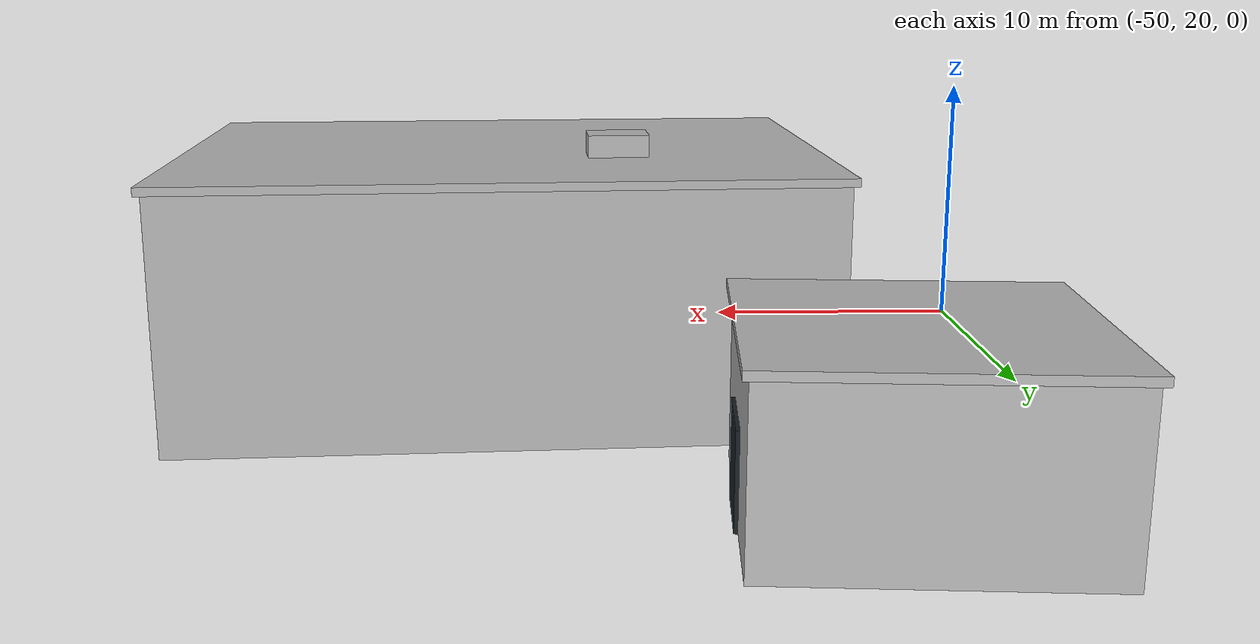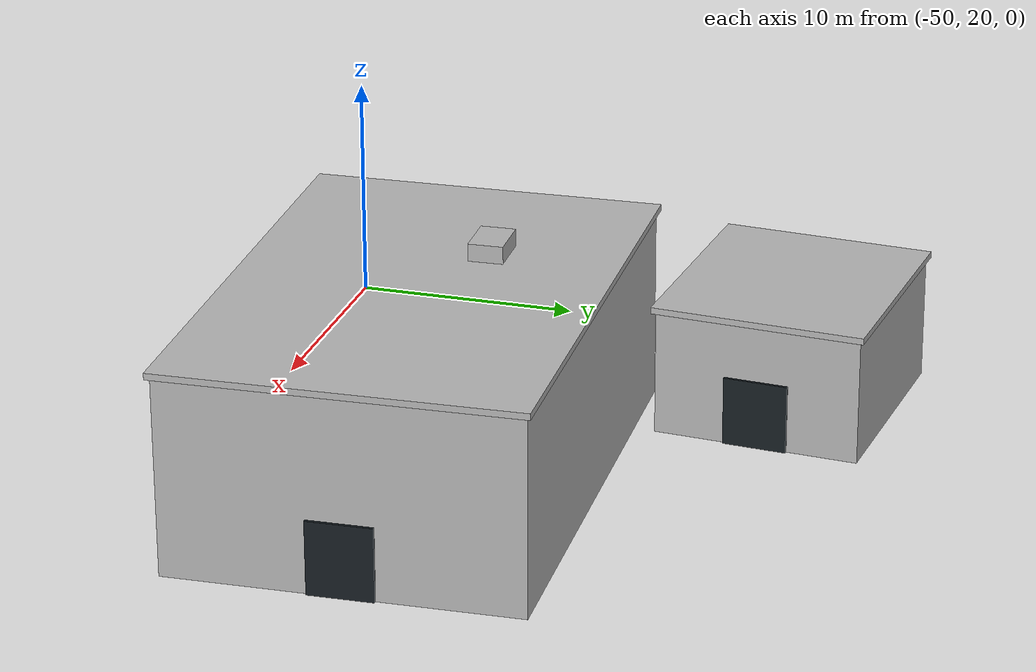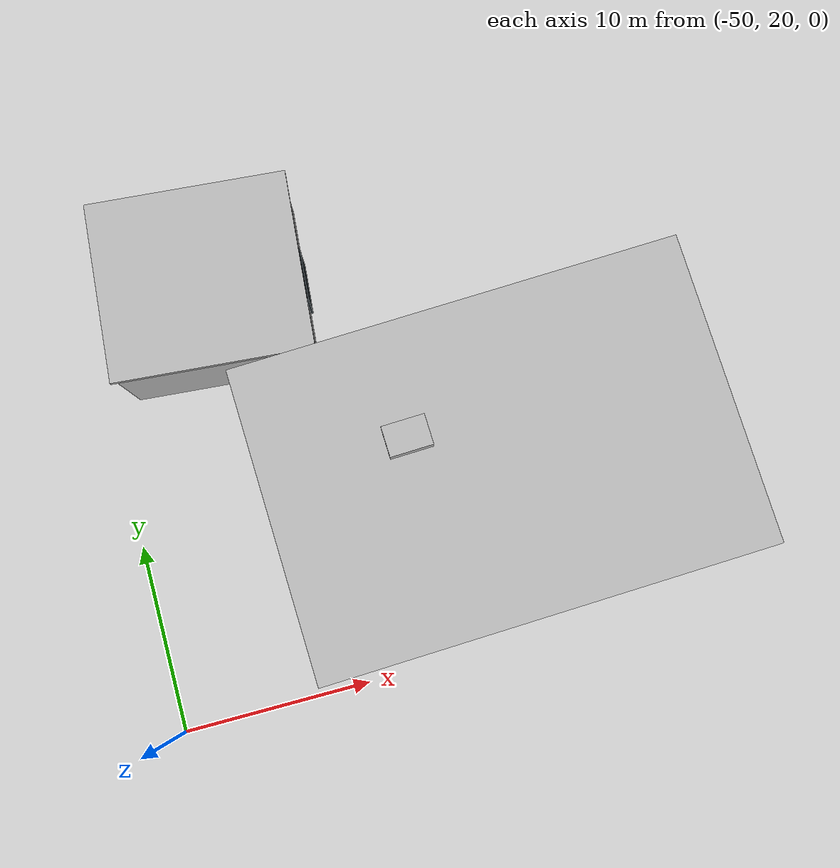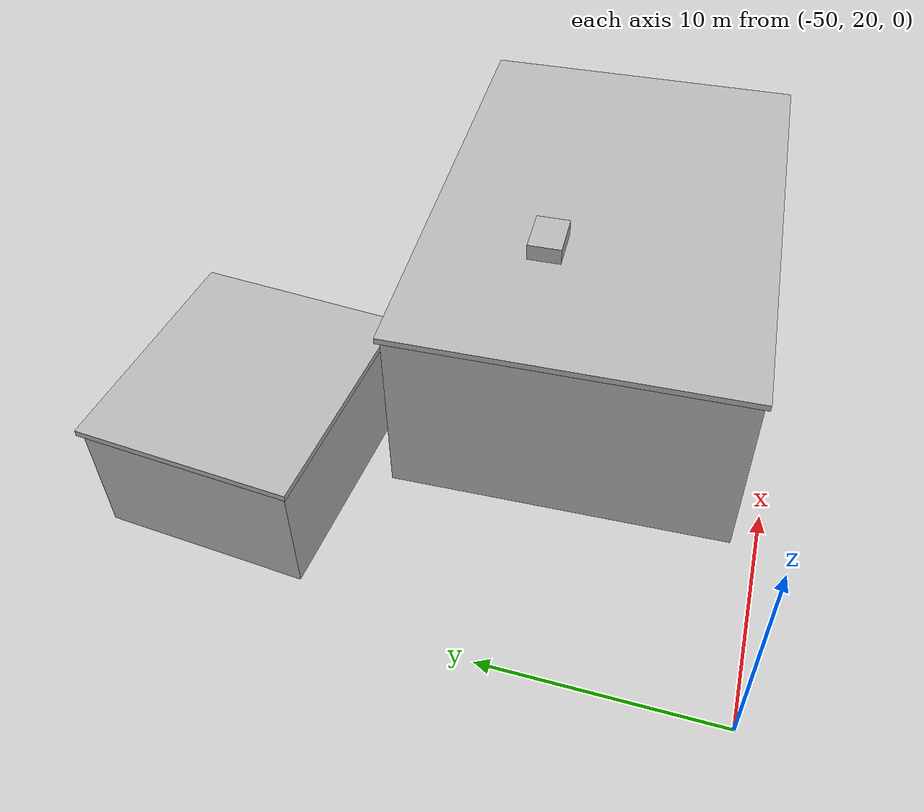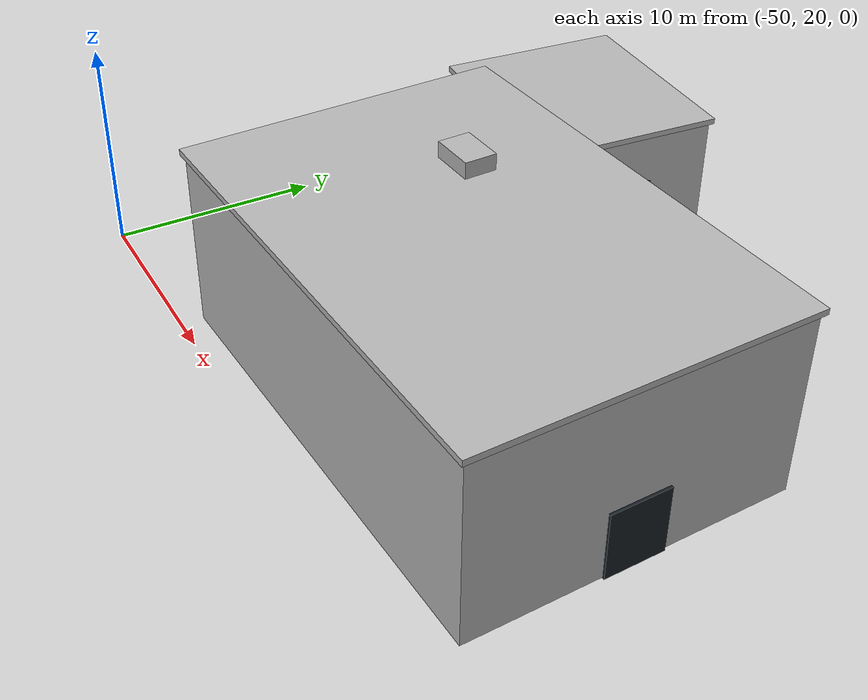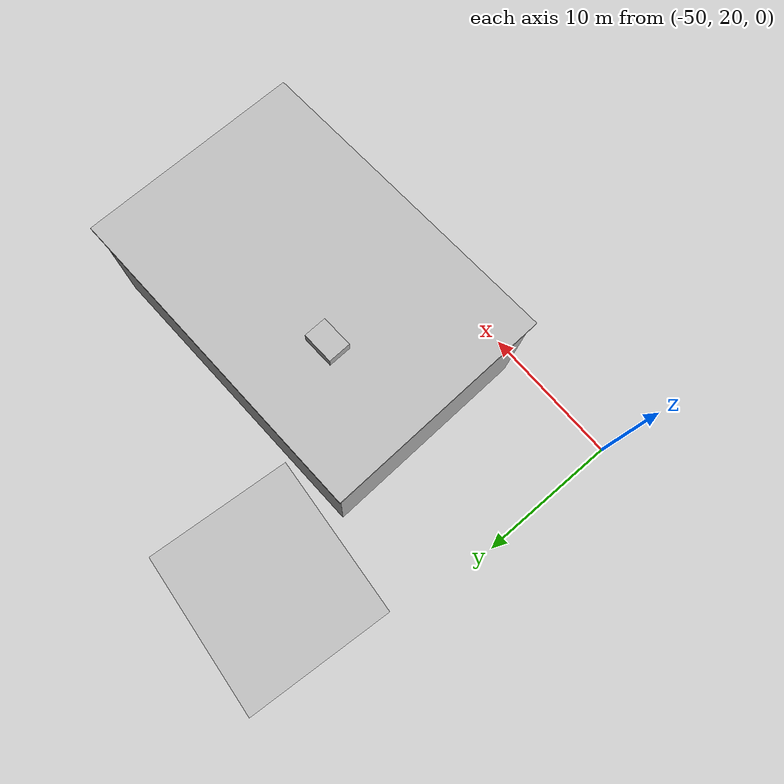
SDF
<sdf version="1.6">
 <world name="uav_complex_120m">
  <model name="warehouse_main">
   <static>true</static>
   <link name="shell">
    <pose>0 0 4.25 0 0 0</pose>
    <collision name="collision">
     <geometry><box><size>22 15 8.5</size></box></geometry>
     <laser_retro>100</laser_retro>
     <surface><friction><ode><mu>1.0</mu><mu2>1.0</mu2></ode></friction></surface>
    </collision>
    <visual name="visual">
     <geometry><box><size>22 15 8.5</size></box></geometry>
     <material>
      <script>
       <uri>model://uav_complex_scene/materials/scripts</uri>
       <uri>model://uav_complex_scene/materials/textures</uri>
       <name>UAVComplex/Brick</name>
      </script>
     </material>
    </visual>
   </link>
   <link name="roof">
    <pose>0 0 8.64 0 0 0</pose>
    <collision name="collision">
     <geometry><box><size>22.35 15.35 0.28</size></box></geometry>
     <laser_retro>100</laser_retro>
     <surface><friction><ode><mu>1.0</mu><mu2>1.0</mu2></ode></friction></surface>
    </collision>
    <visual name="visual">
     <geometry><box><size>22.35 15.35 0.28</size></box></geometry>
     <material>
      <script>
       <uri>model://uav_complex_scene/materials/scripts</uri>
       <uri>model://uav_complex_scene/materials/textures</uri>
       <name>UAVComplex/RustedSteel</name>
      </script>
     </material>
    </visual>
   </link>
   <link name="door">
    <pose>11.065 0 1.6 0 0 0</pose>
    <visual name="visual">
     <geometry><box><size>0.12 2.8 3.2</size></box></geometry>
     <material>
      <ambient>0.09 0.12 0.14 1</ambient>
      <diffuse>0.09 0.12 0.14 1</diffuse>
      <specular>0.08 0.08 0.08 1</specular>
     </material>
    </visual>
   </link>
   <link name="roof_unit">
    <pose>-3.96 2.1 9.09 0 0 0</pose>
    <collision name="collision">
     <geometry><box><size>2.1 1.5 0.9</size></box></geometry>
     <laser_retro>100</laser_retro>
     <surface><friction><ode><mu>1.0</mu><mu2>1.0</mu2></ode></friction></surface>
    </collision>
    <visual name="visual">
     <geometry><box><size>2.1 1.5 0.9</size></box></geometry>
     <material>
      <script>
       <uri>model://uav_complex_scene/materials/scripts</uri>
       <uri>model://uav_complex_scene/materials/textures</uri>
       <name>UAVComplex/RustedSteel</name>
      </script>
     </material>
    </visual>
   </link>
   <pose>-31 29 0 0 0 0.04</pose>
  </model>
  <model name="warehouse_annex">
   <static>true</static>
   <link name="shell">
    <pose>0 0 2.75 0 0 0</pose>
    <collision name="collision">
     <geometry><box><size>10 9 5.5</size></box></geometry>
     <laser_retro>100</laser_retro>
     <surface><friction><ode><mu>1.0</mu><mu2>1.0</mu2></ode></friction></surface>
    </collision>
    <visual name="visual">
     <geometry><box><size>10 9 5.5</size></box></geometry>
     <material>
      <script>
       <uri>model://uav_complex_scene/materials/scripts</uri>
       <uri>model://uav_complex_scene/materials/textures</uri>
       <name>UAVComplex/Brick</name>
      </script>
     </material>
    </visual>
   </link>
   <link name="roof">
    <pose>0 0 5.64 0 0 0</pose>
    <collision name="collision">
     <geometry><box><size>10.35 9.35 0.28</size></box></geometry>
     <laser_retro>100</laser_retro>
     <surface><friction><ode><mu>1.0</mu><mu2>1.0</mu2></ode></friction></surface>
    </collision>
    <visual name="visual">
     <geometry><box><size>10.35 9.35 0.28</size></box></geometry>
     <material>
      <script>
       <uri>model://uav_complex_scene/materials/scripts</uri>
       <uri>model://uav_complex_scene/materials/textures</uri>
       <name>UAVComplex/RustedSteel</name>
      </script>
     </material>
    </visual>
   </link>
   <link name="door">
    <pose>5.065 0 1.5125 0 0 0</pose>
    <visual name="visual">
     <geometry><box><size>0.12 2.8 3.025</size></box></geometry>
     <material>
      <ambient>0.09 0.12 0.14 1</ambient>
      <diffuse>0.09 0.12 0.14 1</diffuse>
      <specular>0.08 0.08 0.08 1</specular>
     </material>
    </visual>
   </link>
   <pose>-43 42 0 0 0 -0.08</pose>
  </model>
 </world>
</sdf>
